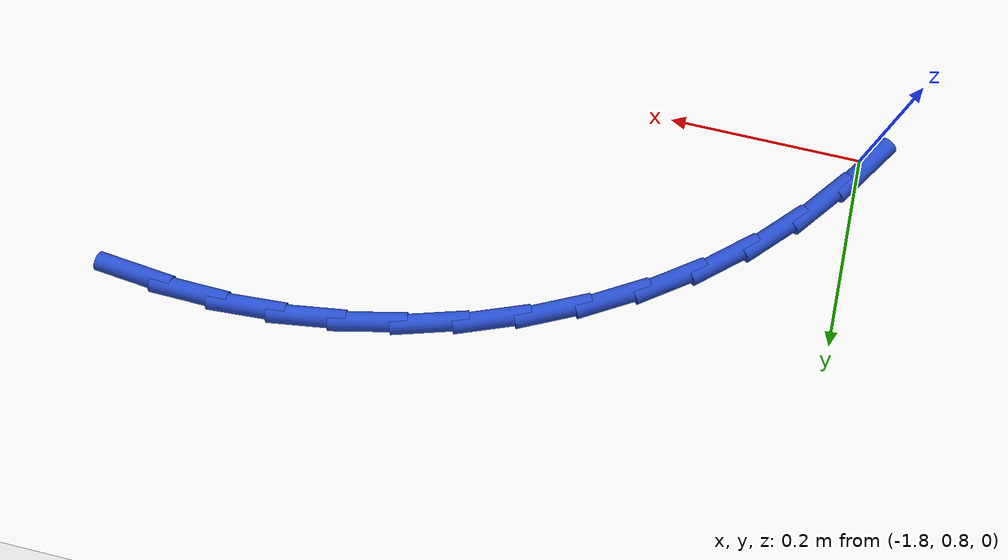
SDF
<sdf version="1.6">
 <world name="default">
  <model name="ground_plane">
   <static>1</static>
   <link name="link">
    <collision name="collision">
     <geometry><plane><normal>0 0 1</normal><size>100 100</size></plane></geometry>
     <surface><friction><ode><mu>100</mu><mu2>50</mu2></ode></friction></surface>
    </collision>
    <visual name="visual">
     <cast_shadows>0</cast_shadows>
     <geometry><plane><normal>0 0 1</normal><size>100 100</size></plane></geometry>
     <material>
      <script><uri>file://media/materials/scripts/gazebo.material</uri><name>Gazebo/WhiteGlow</name></script>
     </material>
    </visual>
   </link>
  </model>
  <model name="line">
   <link name="link_28">
    <pose>-1.1046004640920797 1.089056079304957 0.01 0 1.57 -0.09752463056201657</pose>
    <collision name="collision">
     <geometry><cylinder><radius>0.01</radius><length>0.08</length></cylinder></geometry>
    </collision>
    <visual name="visual">
     <material>
      <script><name>Gazebo/Blue</name><uri>file://media/materials/scripts/gazebo.material</uri></script>
     </material>
     <geometry><cylinder><radius>0.01</radius><length>0.08</length></cylinder></geometry>
    </visual>
   </link>
   <link name="link_29">
    <pose>-1.163931913177456 1.094860771549996 0.01 0 1.57 -0.017781017216821255</pose>
    <collision name="collision">
     <geometry><cylinder><radius>0.01</radius><length>0.08</length></cylinder></geometry>
    </collision>
    <visual name="visual">
     <material>
      <script><name>Gazebo/Blue</name><uri>file://media/materials/scripts/gazebo.material</uri></script>
     </material>
     <geometry><cylinder><radius>0.01</radius><length>0.08</length></cylinder></geometry>
    </visual>
   </link>
   <link name="link_30">
    <pose>-1.2241894262840183 1.0959323243593793 0.01 0 1.57 0.062413082052847346</pose>
    <collision name="collision">
     <geometry><cylinder><radius>0.01</radius><length>0.08</length></cylinder></geometry>
    </collision>
    <visual name="visual">
     <material>
      <script><name>Gazebo/Blue</name><uri>file://media/materials/scripts/gazebo.material</uri></script>
     </material>
     <geometry><cylinder><radius>0.01</radius><length>0.08</length></cylinder></geometry>
    </visual>
   </link>
   <link name="link_31">
    <pose>-1.2850966926564675 1.0921259704471191 0.01 0 1.57 0.1396547085646435</pose>
    <collision name="collision">
     <geometry><cylinder><radius>0.01</radius><length>0.08</length></cylinder></geometry>
    </collision>
    <visual name="visual">
     <material>
      <script><name>Gazebo/Blue</name><uri>file://media/materials/scripts/gazebo.material</uri></script>
     </material>
     <geometry><cylinder><radius>0.01</radius><length>0.08</length></cylinder></geometry>
    </visual>
   </link>
   <link name="link_32">
    <pose>-1.3460747240797237 1.0835543029883414 0.01 0 1.57 0.21519857282188737</pose>
    <collision name="collision">
     <geometry><cylinder><radius>0.01</radius><length>0.08</length></cylinder></geometry>
    </collision>
    <visual name="visual">
     <material>
      <script><name>Gazebo/Blue</name><uri>file://media/materials/scripts/gazebo.material</uri></script>
     </material>
     <geometry><cylinder><radius>0.01</radius><length>0.08</length></cylinder></geometry>
    </visual>
   </link>
   <link name="link_33">
    <pose>-1.4065339263881151 1.0703389331813074 0.01 0 1.57 0.29040884933355526</pose>
    <collision name="collision">
     <geometry><cylinder><radius>0.01</radius><length>0.08</length></cylinder></geometry>
    </collision>
    <visual name="visual">
     <material>
      <script><name>Gazebo/Blue</name><uri>file://media/materials/scripts/gazebo.material</uri></script>
     </material>
     <geometry><cylinder><radius>0.01</radius><length>0.08</length></cylinder></geometry>
    </visual>
   </link>
   <link name="link_34">
    <pose>-1.4658847054159694 1.0526014722242782 0.01 0 1.57 0.36662676407507055</pose>
    <collision name="collision">
     <geometry><cylinder><radius>0.01</radius><length>0.08</length></cylinder></geometry>
    </collision>
    <visual name="visual">
     <material>
      <script><name>Gazebo/Blue</name><uri>file://media/materials/scripts/gazebo.material</uri></script>
     </material>
     <geometry><cylinder><radius>0.01</radius><length>0.08</length></cylinder></geometry>
    </visual>
   </link>
   <link name="link_35">
    <pose>-1.523537466997614 1.0304635313155144 0.01 0 1.57 0.4451911996746963</pose>
    <collision name="collision">
     <geometry><cylinder><radius>0.01</radius><length>0.08</length></cylinder></geometry>
    </collision>
    <visual name="visual">
     <material>
      <script><name>Gazebo/Blue</name><uri>file://media/materials/scripts/gazebo.material</uri></script>
     </material>
     <geometry><cylinder><radius>0.01</radius><length>0.08</length></cylinder></geometry>
    </visual>
   </link>
   <link name="link_36">
    <pose>-1.5789026169673779 1.0040467216532782 0.01 0 1.57 0.5274501813059257</pose>
    <collision name="collision">
     <geometry><cylinder><radius>0.01</radius><length>0.08</length></cylinder></geometry>
    </collision>
    <visual name="visual">
     <material>
      <script><name>Gazebo/Blue</name><uri>file://media/materials/scripts/gazebo.material</uri></script>
     </material>
     <geometry><cylinder><radius>0.01</radius><length>0.08</length></cylinder></geometry>
    </visual>
   </link>
   <link name="link_37">
    <pose>-1.6313905611595878 0.9734726544358296 0.01 0 1.57 0.6147521662382277</pose>
    <collision name="collision">
     <geometry><cylinder><radius>0.01</radius><length>0.08</length></cylinder></geometry>
    </collision>
    <visual name="visual">
     <material>
      <script><name>Gazebo/Blue</name><uri>file://media/materials/scripts/gazebo.material</uri></script>
     </material>
     <geometry><cylinder><radius>0.01</radius><length>0.08</length></cylinder></geometry>
    </visual>
   </link>
   <link name="link_38">
    <pose>-1.6804117054085725 0.9388629408614305 0.01 0 1.57 0.7084023104860236</pose>
    <collision name="collision">
     <geometry><cylinder><radius>0.01</radius><length>0.08</length></cylinder></geometry>
    </collision>
    <visual name="visual">
     <material>
      <script><name>Gazebo/Blue</name><uri>file://media/materials/scripts/gazebo.material</uri></script>
     </material>
     <geometry><cylinder><radius>0.01</radius><length>0.08</length></cylinder></geometry>
    </visual>
   </link>
   <link name="link_39">
    <pose>-1.7253764555486593 0.9003391921283418 0.01 0 1.57 0.8073314780506238</pose>
    <collision name="collision">
     <geometry><cylinder><radius>0.01</radius><length>0.08</length></cylinder></geometry>
    </collision>
    <visual name="visual">
     <material>
      <script><name>Gazebo/Blue</name><uri>file://media/materials/scripts/gazebo.material</uri></script>
     </material>
     <geometry><cylinder><radius>0.01</radius><length>0.08</length></cylinder></geometry>
    </visual>
   </link>
   <link name="link_40">
    <pose>-1.7658412552995817 0.8580592344956444 0.01 0 1.57 0.9003742680526028</pose>
    <collision name="collision">
     <geometry><cylinder><radius>0.01</radius><length>0.08</length></cylinder></geometry>
    </collision>
    <visual name="visual">
     <material>
      <script><name>Gazebo/Blue</name><uri>file://media/materials/scripts/gazebo.material</uri></script>
     </material>
     <geometry><cylinder><radius>0.01</radius><length>0.08</length></cylinder></geometry>
    </visual>
   </link>
   <link name="link_41">
    <pose>-1.8020791744885338 0.8123586060401076 0.01 0 1.57 0.9825663364951052</pose>
    <collision name="collision">
     <geometry><cylinder><radius>0.01</radius><length>0.08</length></cylinder></geometry>
    </collision>
    <visual name="visual">
     <material>
      <script><name>Gazebo/Blue</name><uri>file://media/materials/scripts/gazebo.material</uri></script>
     </material>
     <geometry><cylinder><radius>0.01</radius><length>0.08</length></cylinder></geometry>
    </visual>
   </link>
  </model>
 </world>
</sdf>
